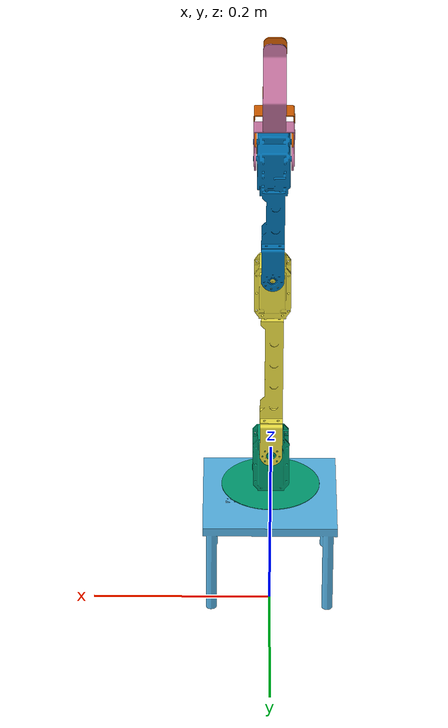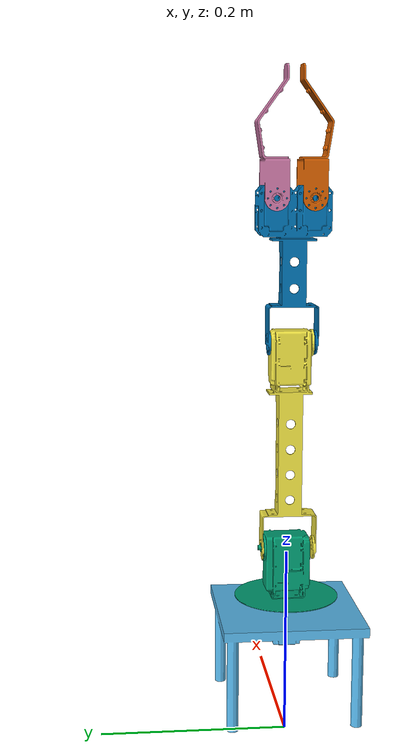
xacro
<?xml version="1.0"?>
<robot name="CrustCrawler" xmlns:xacro="http://www.ros.org/wiki/xacro">
  <xacro:property name="M_pi" value="3.1415" />
  <xacro:property name="LinkWidth" value="0.025" />
  <xacro:property name="LinkHeight" value="0.02" />

  <xacro:property name="offset" value="0.0" />

  <xacro:property name="MotorWidth" value="0.04" />
  <xacro:property name="MotorLength" value="0.055" />
  <xacro:property name="MotorOffset" value="0.04" />

  <xacro:property name="BaseWidth" value="0.15" />

  <xacro:property name="L0" value="0.01" />
  <xacro:property name="L1" value="0.055" />
  <xacro:property name="L2" value="0.22" />
  <xacro:property name="L3" value="0.15" />
  <xacro:property name="Lp" value="0.0" />

  <xacro:property name="Lc" value="0.02895" />
  <xacro:property name="Lc2" value="0.17433" />
  <xacro:property name="Lc3" value="0.12078" />
  <xacro:property name="d3" value="-0.003" />

  <xacro:property name="m1" value="0.1874" />
  <xacro:property name="m2" value="0.17226" />
  <xacro:property name="m3" value="0.18391" />
  <xacro:property name="mp" value="0.0" />

  <!-- Gazebo -->
  <gazebo>
    <plugin name="gazebo_ros_control" filename="libgazebo_ros_control.so">
      <robotNamespace>/crustcrawler</robotNamespace>
    </plugin>

    <plugin name="gazebo_plugin" filename="libgazebo_plugin.so">
    </plugin>

  </gazebo>

  <gazebo reference="link1">
    <selfCollide>true</selfCollide>
  </gazebo>
  <gazebo reference="link2">
    <selfCollide>true</selfCollide>
  </gazebo>
  <gazebo reference="link3">
    <selfCollide>true</selfCollide>
  </gazebo>
  <gazebo reference="gripper_left">
    <selfCollide>false</selfCollide>
  </gazebo>
  <gazebo reference="gripper_right">
    <selfCollide>false</selfCollide>
  </gazebo>

  <!-- links, joints and transmissions -->

  <link name="world"/>

  <joint name="world_base" type="fixed">
    <parent link="world"/>
    <child link="base"/>
    <origin xyz = "0 0 0.15" />
  </joint>

  <!-- base link -->

  <link name="base">
    <collision>
      <origin xyz="0 0 -0.015" rpy="0 0 0"/>
      <geometry>
	       <box size="${BaseWidth} ${BaseWidth} 0.01"/>
      </geometry>
    </collision>

    <visual>
      <origin xyz="0 0 ${-L1/2}" rpy="0 0 0"/>
      <geometry>
         <mesh filename="package://crustcrawler_description/meshes/Base.STL"/>
      </geometry>
    </visual>

    <inertial>
      <origin xyz="0 0 0" rpy="0 0 0"/>
      <mass value="${m1}"/>
      <inertia
	  ixx="0.0" ixy="0.0" ixz="0.0"
	  iyy="0.0" iyz="0.0"
	  izz="0.0"/>
    </inertial>
  </link>

  <joint name="joint1" type="continuous">
    <axis xyz="0 0 1"/>
    <!--limit effort="1000.0" lower="${-M_pi}" upper="${M_pi}" velocity="0.5"/ -->
    <parent link="base"/>
    <child link="link1"/>
    <origin xyz="0 0 0" rpy= "0 0 0"/>
    <dynamics damping="1.0" friction="0.4"/>
  </joint>

  <!-- link 1 -->

  <link name="link1">
    <collision>
      <origin xyz="0 0 ${L1 / 1.8}" rpy="0 0 0"/>
      <geometry>
        <box size="${MotorWidth} ${MotorLength} ${L1*1.3}"/>
      </geometry>
    </collision>

    <visual>
      <origin xyz="0 0 ${-L1/2}" rpy="0 0 0"/>
      <geometry>
        <mesh filename="package://crustcrawler_description/meshes/Link1.STL"/>
      </geometry>
    </visual>

    <inertial>
      <origin xyz="0 0 ${Lc}" rpy="0 0 0"/>
      <mass value="${m1}"/>
      <inertia
    	  ixx="0.0001130151" ixy="-0.00000860914" ixz="0.00000048865"
    	                     iyy="0.00008504653"  iyz="-0.00000210564"
    	                                          izz="0.0001180217"/>
    </inertial>
  </link>

  <joint name="joint2" type="continuous">
    <origin xyz="0 0 ${L1}" rpy="${-M_pi / 2} ${-M_pi/2} ${M_pi}"/>
    <axis xyz="0 0 1"/>
    <parent link="link1"/>
    <child link="link2"/>
    <dynamics damping="1.0" friction="0.4"/>
  </joint>

  <!-- link 2 -->
  <link name="link2">
    <collision>
      <origin xyz="${L2/2 - MotorOffset/2} 0 0" rpy="0 0 0"/>
      <geometry>
         <box size=" ${L2 - MotorOffset*3} ${LinkWidth} ${LinkHeight}"/>
      </geometry>
    </collision>

    <collision>
      <origin xyz = "${L2 - 0.015} 0 0" />
      <geometry>
         <box size=" ${0.05} ${MotorWidth} ${MotorLength}"/>
      </geometry>
    </collision>

    <visual>
      <origin xyz="0 0 -0.002" rpy="${M_pi/2} ${-M_pi/2} ${M_pi/2}"/>
      <geometry>
	       <mesh filename="package://crustcrawler_description/meshes/Link2.STL"/>
      </geometry>
    </visual>

    <inertial>
      <origin xyz="${Lc2} 0 0" rpy="0 0 0"/>
      <mass value="${m2}"/>
      <inertia
	  ixx="0.00006763106" ixy="0.000003336"  ixz="-0.00000058233"
                        iyy="0.0006261946" iyz="0.00000477121"
	                                         izz="0.000635118"/>
    </inertial>
  </link>

  <joint name="joint3" type="continuous">
    <axis xyz="0 0 1"/>
    <parent link="link2"/>
    <child link="link3"/>
    <origin xyz="${L2} 0 0" rpy="0 0 0"/>
    <dynamics damping="0.7" friction="0.1"/>
  </joint>

  <!-- link 3 -->

  <link name="link3">
    <collision>
      <origin xyz="${L3/2} 0 ${d3}" rpy="0 0 0"/>
      <geometry>
        <box size=" ${L3 - MotorOffset*2} ${LinkWidth/2} ${LinkHeight}"/>
      </geometry>
    </collision>
    <collision>
      <origin xyz="${L3 - 0.01} 0 ${d3}" rpy="0 0 0"/>
      <geometry>
        <box size=" ${0.045} ${MotorLength/2} ${MotorWidth*2 - 0.005}"/>
      </geometry>
    </collision>

    <visual>
      <origin xyz="0 0 0" rpy="${M_pi/2} ${-M_pi/2} ${M_pi/2}"/>
      <geometry>
        <mesh filename="package://crustcrawler_description/meshes/Link3.STL"/>
      </geometry>
    </visual>

    <inertial>
      <origin xyz="${Lc3} 0 0 " rpy="0 0 0"/>
      <mass value="${m3}"/>
      <inertia
    ixx="0.00009477987" ixy="0.00000560523" ixz="0.00000272008"
                        iyy="0.0003202224"  iyz="0.00000034515"
                                            izz="0.0002467779"/>
    </inertial>
  </link>

  <joint name="joint4" type="continuous">
    <axis xyz="0 0 1"/>
    <parent link="link3"/>
    <child link="gripper_left"/>
    <origin xyz="${L3 - 0.003} -0.0015 0.022" rpy="${-M_pi/2} 0 0"/>
    <dynamics damping="0.7" friction="0.1"/>
  </joint>

  <joint name="joint5" type="continuous">
    <axis xyz="0 0 1"/>
    <parent link="link3"/>
    <child link="gripper_right"/>
    <origin xyz="${L3 - 0.003} 0.0015 -0.0165" rpy="${-M_pi/2} 0 0"/>
    <dynamics damping="0.7" friction="0.1"/>
  </joint> -->

  <!-- left gripper -->

  <link name="gripper_left">
    <collision>
      <origin xyz="0 0 0" rpy="0 0 0"/>
      <geometry>
        <mesh filename="package://crustcrawler_description/meshes/Grip.STL"/>
      </geometry>
    </collision>

    <visual>
      <origin xyz="0 0 0" rpy="0 0 0"/>
      <geometry>
        <mesh filename="package://crustcrawler_description/meshes/Grip.STL"/>
      </geometry>
    </visual>

    <inertial>
      <origin xyz="0 0 0 " rpy="0 0 0"/>
      <mass value="0.02965"/>
      <inertia
        ixx="0.0000798622" ixy="0.0000063743" ixz="-0.0000003256"
                   iyy="0.000489436900000000" iyz=" 0.0000014104"
                                       izz="0.000461895400000000"/>
    </inertial>
  </link>

  <!-- right gripper -->

  <link name="gripper_right">
    <collision>
      <origin xyz="0 0.0 0" rpy="${M_pi} 0 0"/>
      <geometry>
        <mesh filename="package://crustcrawler_description/meshes/Grip.STL"/>
      </geometry>
    </collision>

    <visual>
      <origin xyz="0 0 0" rpy="${M_pi} 0 0"/>
      <geometry>
        <mesh filename="package://crustcrawler_description/meshes/Grip.STL"/>
      </geometry>
    </visual>

    <inertial>
      <origin xyz="0 0 0 " rpy="0 0 0"/>
      <mass value="0.02965"/>
      <inertia
        ixx="0.0000798622" ixy="0.0000063743" ixz="-0.0000003256"
                 iyy="0.000489436900000000" iyz=" 0.0000014104"
                                     izz="0.000461895400000000" />
     </inertial>
  </link>

</robot>
